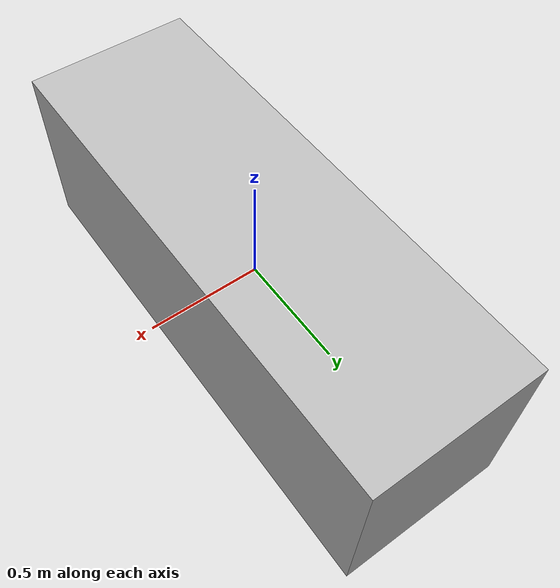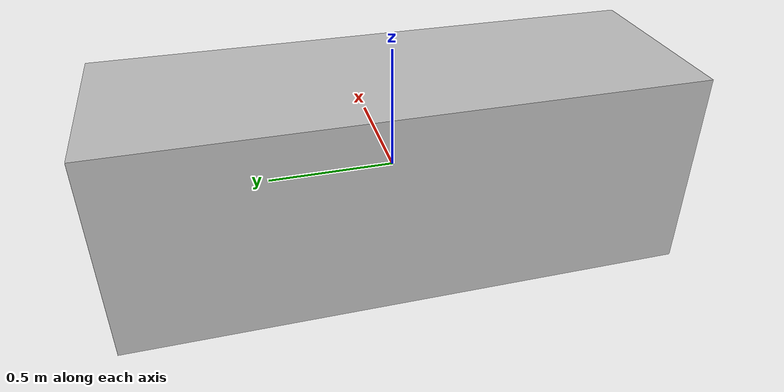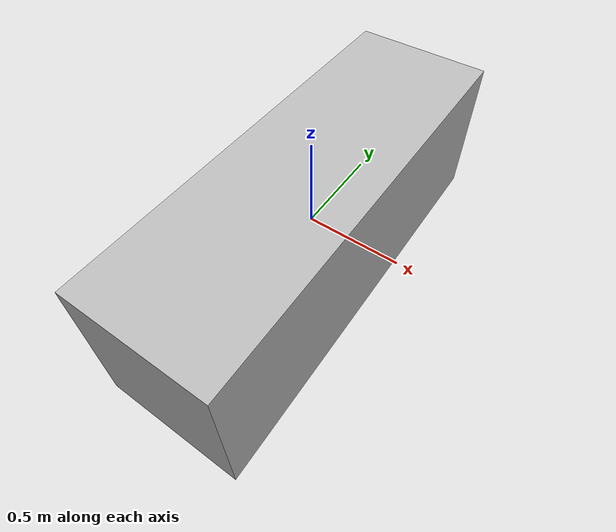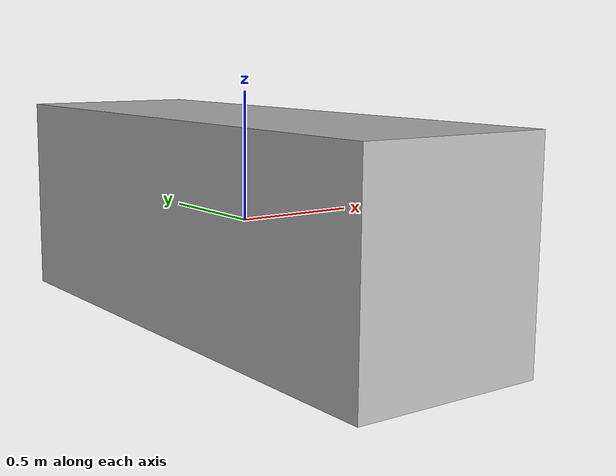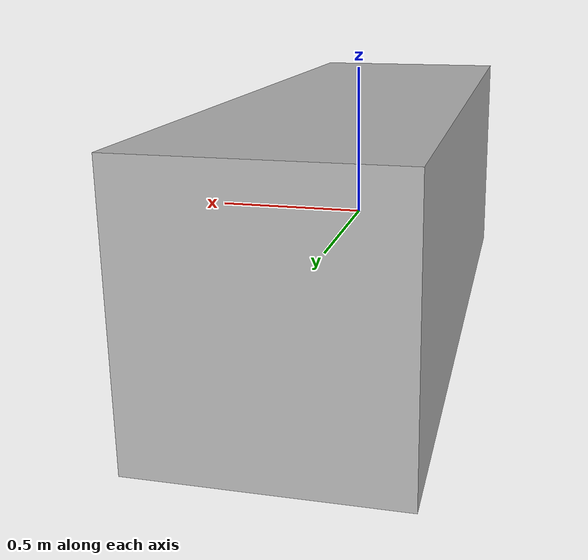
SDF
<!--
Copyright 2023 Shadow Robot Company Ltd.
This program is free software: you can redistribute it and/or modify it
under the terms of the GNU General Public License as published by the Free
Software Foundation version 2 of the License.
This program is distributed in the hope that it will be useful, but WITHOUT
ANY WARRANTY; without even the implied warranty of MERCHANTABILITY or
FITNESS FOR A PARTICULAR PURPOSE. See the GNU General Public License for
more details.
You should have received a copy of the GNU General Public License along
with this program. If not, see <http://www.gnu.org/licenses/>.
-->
<?xml version='1.0'?>

<sdf version="1.4">
<model name="bimanual_stand">
  <static>true</static>
    <link name="link">
      <inertial>
        <mass>1.0</mass>
        <inertia>
          <!-- http://answers.gazebosim.org/question/4372/the-inertia-matrix-explained/ -->
          <ixx>0.4779</ixx>
          <ixy>0.0</ixy>
          <ixz>0.0</ixz>
          <iyy>0.1029</iyy>
          <iyz>0.0</iyz>
          <izz>0.4687</izz>
        </inertia>
      </inertial>
      <collision name="collision">
        <geometry>
          <box>
            <size>0.75 2.25 0.82</size>
          </box>
        </geometry>
      </collision>
      <visual name="visual">
        <geometry>
          <box>
            <size>0.75 2.25 0.82</size>
          </box>
        </geometry>
      </visual>
    </link>
  </model>
</sdf>
